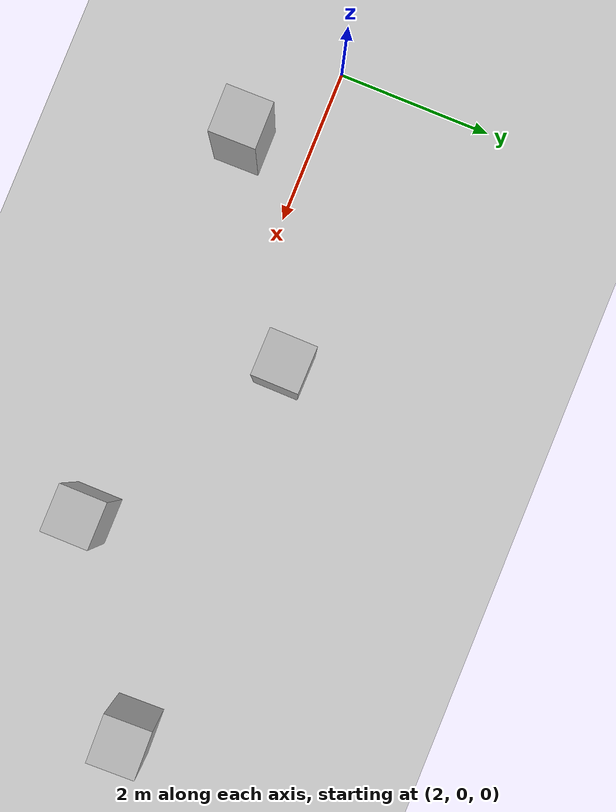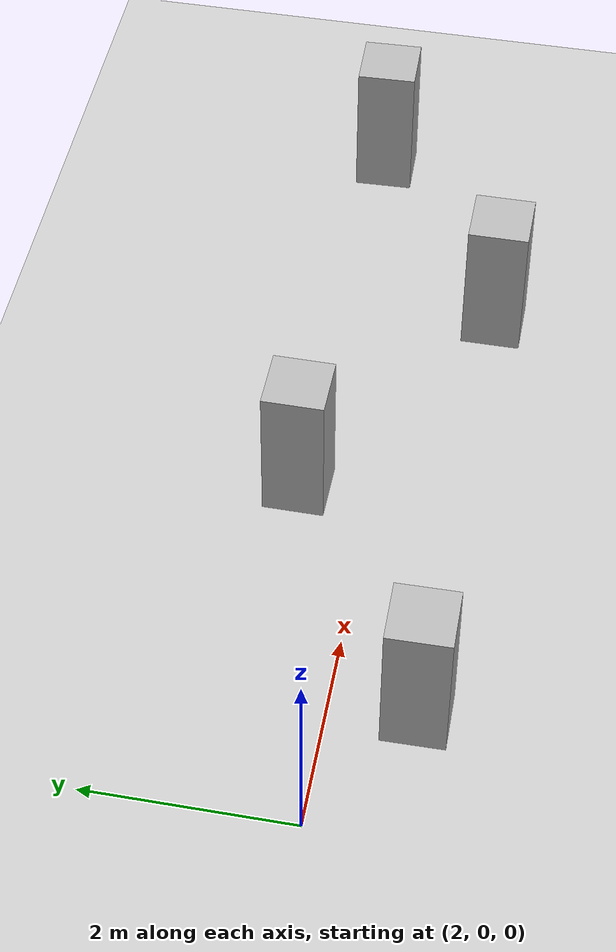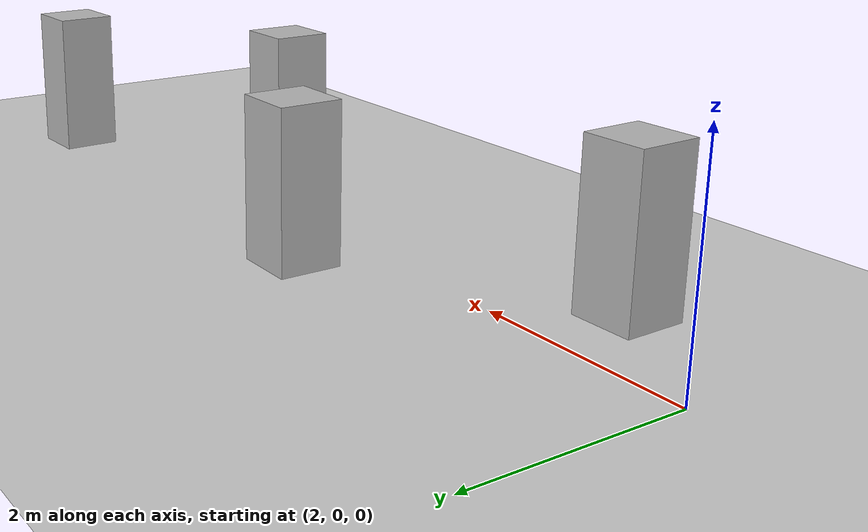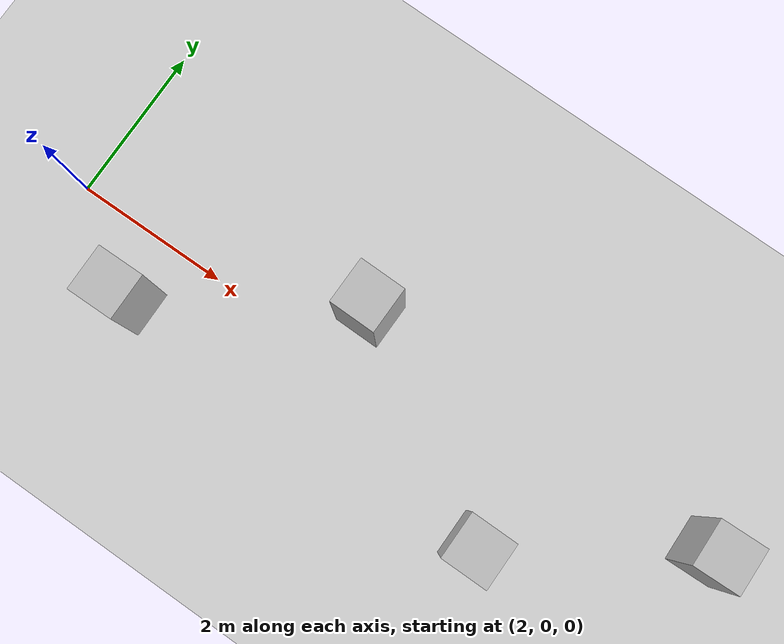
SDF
<?xml version="1.0"?>
<sdf version="1.6">
  <world name="v2-04g-r2-static-s4957">
    <gravity>0 0 -9.81</gravity>
    <physics name="v2_deterministic" type="ode">
      <max_step_size>0.002</max_step_size>
      <real_time_update_rate>500</real_time_update_rate>
    </physics>
    <include>
      <uri>model://sun</uri>
    </include>
    <include>
      <uri>model://ground_plane</uri>
    </include>
    <model name="pillar-1">
      <static>true</static>
      <pose>3.299982260 -0.809114668 0.750000000 0 0 0.010675406</pose>
      <link name="link">
        <collision name="collision">
          <geometry>
            <box>
              <size>0.600000 0.600000 1.500000</size>
            </box>
          </geometry>
        </collision>
        <visual name="visual">
          <geometry>
            <box>
              <size>0.600000 0.600000 1.500000</size>
            </box>
          </geometry>
        </visual>
      </link>
    </model>
    <model name="pillar-2">
      <static>true</static>
      <pose>5.762733568 0.736327146 0.750000000 0 0 -0.008360253</pose>
      <link name="link">
        <collision name="collision">
          <geometry>
            <box>
              <size>0.600000 0.600000 1.500000</size>
            </box>
          </geometry>
        </collision>
        <visual name="visual">
          <geometry>
            <box>
              <size>0.600000 0.600000 1.500000</size>
            </box>
          </geometry>
        </visual>
      </link>
    </model>
    <model name="pillar-3">
      <static>true</static>
      <pose>8.356082993 -0.842204240 0.750000000 0 0 -0.001503631</pose>
      <link name="link">
        <collision name="collision">
          <geometry>
            <box>
              <size>0.600000 0.600000 1.500000</size>
            </box>
          </geometry>
        </collision>
        <visual name="visual">
          <geometry>
            <box>
              <size>0.600000 0.600000 1.500000</size>
            </box>
          </geometry>
        </visual>
      </link>
    </model>
    <model name="pillar-4">
      <static>true</static>
      <pose>10.602360871 0.652177967 0.750000000 0 0 0.029867869</pose>
      <link name="link">
        <collision name="collision">
          <geometry>
            <box>
              <size>0.600000 0.600000 1.500000</size>
            </box>
          </geometry>
        </collision>
        <visual name="visual">
          <geometry>
            <box>
              <size>0.600000 0.600000 1.500000</size>
            </box>
          </geometry>
        </visual>
      </link>
    </model>
  </world>
</sdf>
